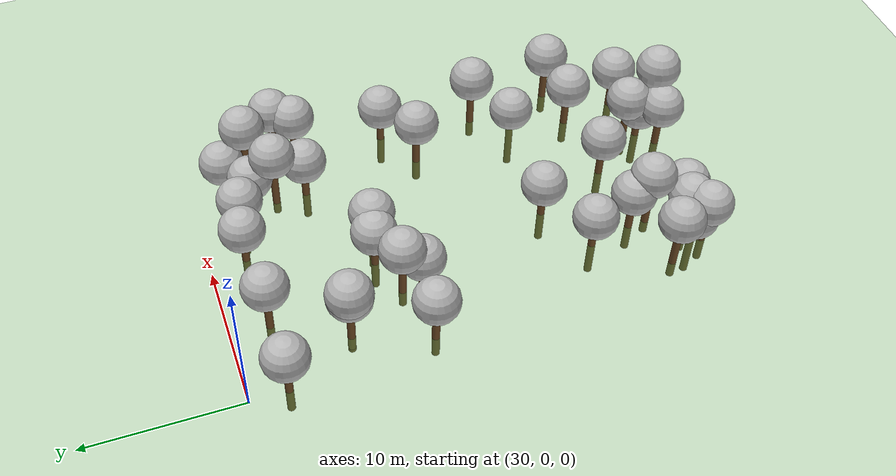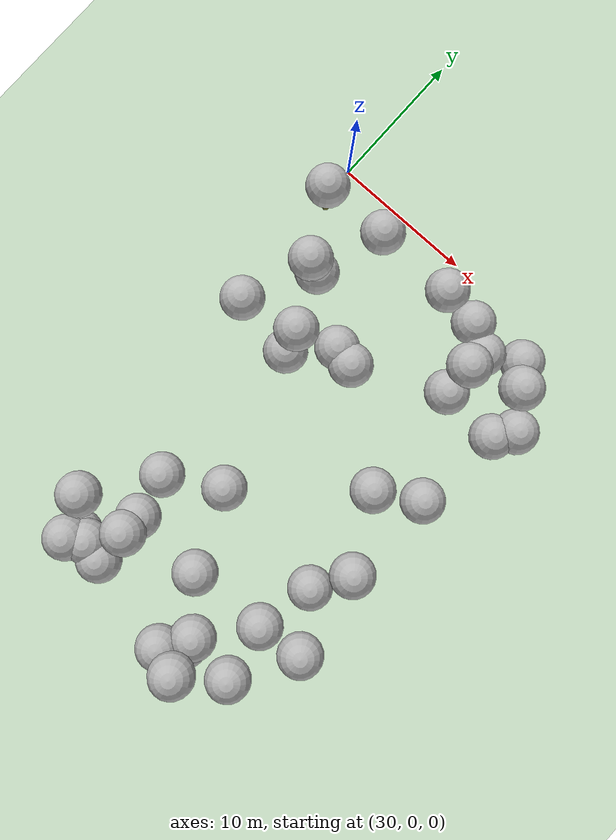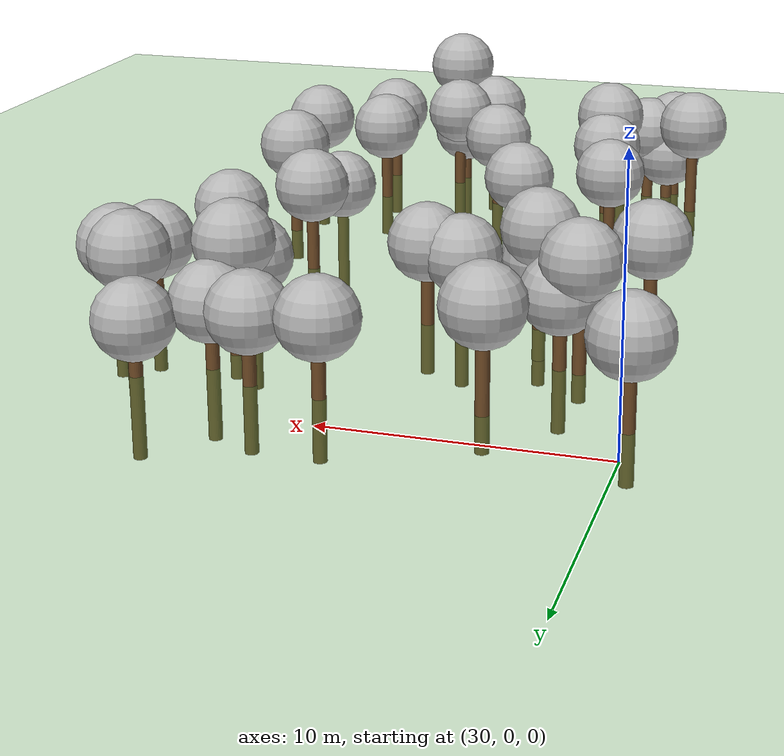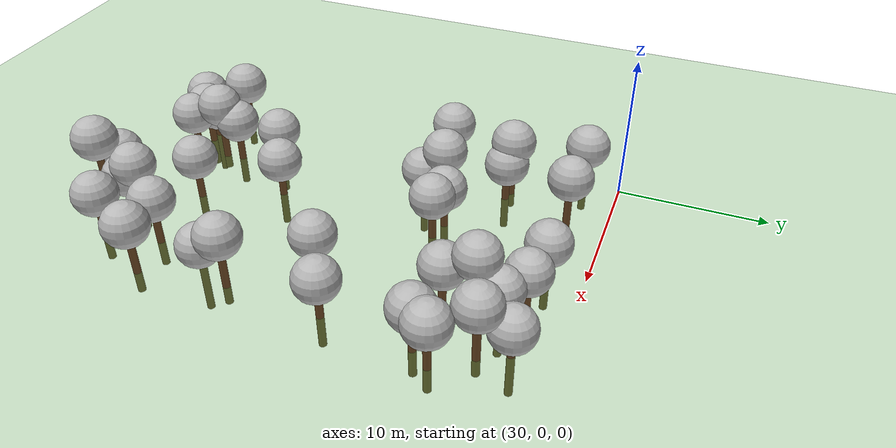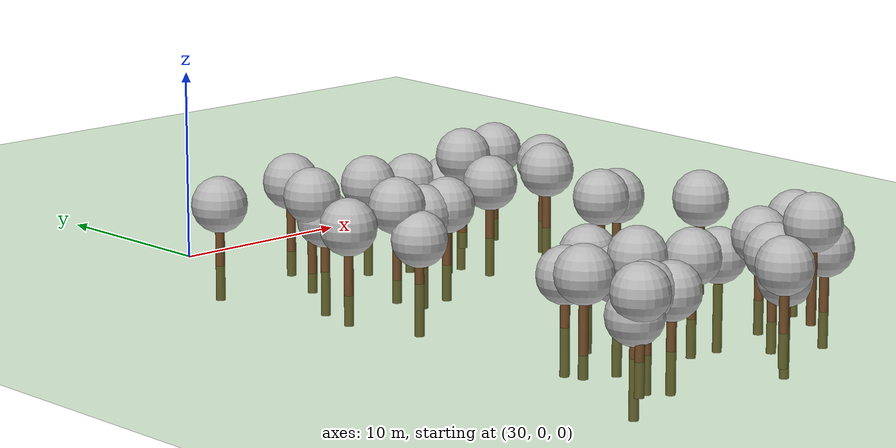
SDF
<sdf version="1.5">
 <world name="default">
  <model name="tree_simple473">
   <static>1</static>
   <link name="link">
    <pose>0 0 0.1 0 -0 0</pose>
    <collision name="collision_trunk">
     <pose>0 0 2 0 -0 0</pose>
     <geometry><cylinder><radius>0.25</radius><length>4</length></cylinder></geometry>
    </collision>
    <collision name="collision_treetop">
     <pose>0 0 5.2 0 -0 0</pose>
     <geometry><sphere><radius>1.5</radius></sphere></geometry>
    </collision>
    <visual name="trunk">
     <pose>0 0 2 0 -0 0</pose>
     <geometry><cylinder><radius>0.25</radius><length>4</length></cylinder></geometry>
     <material>
      <script>
       <uri>model://tree_simple/scripts</uri>
       <uri>model://tree_simple/materials/textures</uri>
       <name>TreeSimple/Trunk</name>
      </script>
     </material>
    </visual>
    <visual name="treetop">
     <pose>0 0 5.2 0 -0 0</pose>
     <geometry><sphere><radius>1.5</radius></sphere></geometry>
     <material>
      <script>
       <uri>model://tree_simple/scripts</uri>
       <uri>model://tree_simple/materials/textures</uri>
       <name>TreeSimple/Treetop</name>
      </script>
     </material>
    </visual>
   </link>
   <pose>35.3600050295 -12.4568326028 -2.9783088301187934 0 -0 0</pose>
  </model>
  <model name="tree_simple468">
   <static>1</static>
   <link name="link">
    <pose>0 0 0.1 0 -0 0</pose>
    <collision name="collision_trunk">
     <pose>0 0 2 0 -0 0</pose>
     <geometry><cylinder><radius>0.25</radius><length>4</length></cylinder></geometry>
    </collision>
    <collision name="collision_treetop">
     <pose>0 0 5.2 0 -0 0</pose>
     <geometry><sphere><radius>1.5</radius></sphere></geometry>
    </collision>
    <visual name="trunk">
     <pose>0 0 2 0 -0 0</pose>
     <geometry><cylinder><radius>0.25</radius><length>4</length></cylinder></geometry>
     <material>
      <script>
       <uri>model://tree_simple/scripts</uri>
       <uri>model://tree_simple/materials/textures</uri>
       <name>TreeSimple/Trunk</name>
      </script>
     </material>
    </visual>
    <visual name="treetop">
     <pose>0 0 5.2 0 -0 0</pose>
     <geometry><sphere><radius>1.5</radius></sphere></geometry>
     <material>
      <script>
       <uri>model://tree_simple/scripts</uri>
       <uri>model://tree_simple/materials/textures</uri>
       <name>TreeSimple/Treetop</name>
      </script>
     </material>
    </visual>
   </link>
   <pose>33.4354348071 -7.20044037788 -2.527827676135984 0 -0 0</pose>
  </model>
  <model name="tree_simple461">
   <static>1</static>
   <link name="link">
    <pose>0 0 0.1 0 -0 0</pose>
    <collision name="collision_trunk">
     <pose>0 0 2 0 -0 0</pose>
     <geometry><cylinder><radius>0.25</radius><length>4</length></cylinder></geometry>
    </collision>
    <collision name="collision_treetop">
     <pose>0 0 5.2 0 -0 0</pose>
     <geometry><sphere><radius>1.5</radius></sphere></geometry>
    </collision>
    <visual name="trunk">
     <pose>0 0 2 0 -0 0</pose>
     <geometry><cylinder><radius>0.25</radius><length>4</length></cylinder></geometry>
     <material>
      <script>
       <uri>model://tree_simple/scripts</uri>
       <uri>model://tree_simple/materials/textures</uri>
       <name>TreeSimple/Trunk</name>
      </script>
     </material>
    </visual>
    <visual name="treetop">
     <pose>0 0 5.2 0 -0 0</pose>
     <geometry><sphere><radius>1.5</radius></sphere></geometry>
     <material>
      <script>
       <uri>model://tree_simple/scripts</uri>
       <uri>model://tree_simple/materials/textures</uri>
       <name>TreeSimple/Treetop</name>
      </script>
     </material>
    </visual>
   </link>
   <pose>48.4583895912 -13.8275705943 -2.4552792062193602 0 -0 0</pose>
  </model>
  <model name="tree_simple400">
   <static>1</static>
   <link name="link">
    <pose>0 0 0.1 0 -0 0</pose>
    <collision name="collision_trunk">
     <pose>0 0 2 0 -0 0</pose>
     <geometry><cylinder><radius>0.25</radius><length>4</length></cylinder></geometry>
    </collision>
    <collision name="collision_treetop">
     <pose>0 0 5.2 0 -0 0</pose>
     <geometry><sphere><radius>1.5</radius></sphere></geometry>
    </collision>
    <visual name="trunk">
     <pose>0 0 2 0 -0 0</pose>
     <geometry><cylinder><radius>0.25</radius><length>4</length></cylinder></geometry>
     <material>
      <script>
       <uri>model://tree_simple/scripts</uri>
       <uri>model://tree_simple/materials/textures</uri>
       <name>TreeSimple/Trunk</name>
      </script>
     </material>
    </visual>
    <visual name="treetop">
     <pose>0 0 5.2 0 -0 0</pose>
     <geometry><sphere><radius>1.5</radius></sphere></geometry>
     <material>
      <script>
       <uri>model://tree_simple/scripts</uri>
       <uri>model://tree_simple/materials/textures</uri>
       <name>TreeSimple/Treetop</name>
      </script>
     </material>
    </visual>
   </link>
   <pose>43.2651902792 -29.893141503 -1.8015736602929753 0 -0 0</pose>
  </model>
  <model name="tree_simple391">
   <static>1</static>
   <link name="link">
    <pose>0 0 0.1 0 -0 0</pose>
    <collision name="collision_trunk">
     <pose>0 0 2 0 -0 0</pose>
     <geometry><cylinder><radius>0.25</radius><length>4</length></cylinder></geometry>
    </collision>
    <collision name="collision_treetop">
     <pose>0 0 5.2 0 -0 0</pose>
     <geometry><sphere><radius>1.5</radius></sphere></geometry>
    </collision>
    <visual name="trunk">
     <pose>0 0 2 0 -0 0</pose>
     <geometry><cylinder><radius>0.25</radius><length>4</length></cylinder></geometry>
     <material>
      <script>
       <uri>model://tree_simple/scripts</uri>
       <uri>model://tree_simple/materials/textures</uri>
       <name>TreeSimple/Trunk</name>
      </script>
     </material>
    </visual>
    <visual name="treetop">
     <pose>0 0 5.2 0 -0 0</pose>
     <geometry><sphere><radius>1.5</radius></sphere></geometry>
     <material>
      <script>
       <uri>model://tree_simple/scripts</uri>
       <uri>model://tree_simple/materials/textures</uri>
       <name>TreeSimple/Treetop</name>
      </script>
     </material>
    </visual>
   </link>
   <pose>35.0521422103 -11.0450283788 -1.38863950883066 0 -0 0</pose>
  </model>
  <model name="tree_simple390">
   <static>1</static>
   <link name="link">
    <pose>0 0 0.1 0 -0 0</pose>
    <collision name="collision_trunk">
     <pose>0 0 2 0 -0 0</pose>
     <geometry><cylinder><radius>0.25</radius><length>4</length></cylinder></geometry>
    </collision>
    <collision name="collision_treetop">
     <pose>0 0 5.2 0 -0 0</pose>
     <geometry><sphere><radius>1.5</radius></sphere></geometry>
    </collision>
    <visual name="trunk">
     <pose>0 0 2 0 -0 0</pose>
     <geometry><cylinder><radius>0.25</radius><length>4</length></cylinder></geometry>
     <material>
      <script>
       <uri>model://tree_simple/scripts</uri>
       <uri>model://tree_simple/materials/textures</uri>
       <name>TreeSimple/Trunk</name>
      </script>
     </material>
    </visual>
    <visual name="treetop">
     <pose>0 0 5.2 0 -0 0</pose>
     <geometry><sphere><radius>1.5</radius></sphere></geometry>
     <material>
      <script>
       <uri>model://tree_simple/scripts</uri>
       <uri>model://tree_simple/materials/textures</uri>
       <name>TreeSimple/Treetop</name>
      </script>
     </material>
    </visual>
   </link>
   <pose>34.8279648661 -23.7978261523 -2.67735708859129 0 -0 0</pose>
  </model>
  <model name="tree_simple385">
   <static>1</static>
   <link name="link">
    <pose>0 0 0.1 0 -0 0</pose>
    <collision name="collision_trunk">
     <pose>0 0 2 0 -0 0</pose>
     <geometry><cylinder><radius>0.25</radius><length>4</length></cylinder></geometry>
    </collision>
    <collision name="collision_treetop">
     <pose>0 0 5.2 0 -0 0</pose>
     <geometry><sphere><radius>1.5</radius></sphere></geometry>
    </collision>
    <visual name="trunk">
     <pose>0 0 2 0 -0 0</pose>
     <geometry><cylinder><radius>0.25</radius><length>4</length></cylinder></geometry>
     <material>
      <script>
       <uri>model://tree_simple/scripts</uri>
       <uri>model://tree_simple/materials/textures</uri>
       <name>TreeSimple/Trunk</name>
      </script>
     </material>
    </visual>
    <visual name="treetop">
     <pose>0 0 5.2 0 -0 0</pose>
     <geometry><sphere><radius>1.5</radius></sphere></geometry>
     <material>
      <script>
       <uri>model://tree_simple/scripts</uri>
       <uri>model://tree_simple/materials/textures</uri>
       <name>TreeSimple/Treetop</name>
      </script>
     </material>
    </visual>
   </link>
   <pose>32.6946046779 -7.01468529962 -1.195493021520604 0 -0 0</pose>
  </model>
  <model name="tree_simple380">
   <static>1</static>
   <link name="link">
    <pose>0 0 0.1 0 -0 0</pose>
    <collision name="collision_trunk">
     <pose>0 0 2 0 -0 0</pose>
     <geometry><cylinder><radius>0.25</radius><length>4</length></cylinder></geometry>
    </collision>
    <collision name="collision_treetop">
     <pose>0 0 5.2 0 -0 0</pose>
     <geometry><sphere><radius>1.5</radius></sphere></geometry>
    </collision>
    <visual name="trunk">
     <pose>0 0 2 0 -0 0</pose>
     <geometry><cylinder><radius>0.25</radius><length>4</length></cylinder></geometry>
     <material>
      <script>
       <uri>model://tree_simple/scripts</uri>
       <uri>model://tree_simple/materials/textures</uri>
       <name>TreeSimple/Trunk</name>
      </script>
     </material>
    </visual>
    <visual name="treetop">
     <pose>0 0 5.2 0 -0 0</pose>
     <geometry><sphere><radius>1.5</radius></sphere></geometry>
     <material>
      <script>
       <uri>model://tree_simple/scripts</uri>
       <uri>model://tree_simple/materials/textures</uri>
       <name>TreeSimple/Treetop</name>
      </script>
     </material>
    </visual>
   </link>
   <pose>49.0222625073 -7.79616728684 -2.0938247294900254 0 -0 0</pose>
  </model>
  <model name="tree_simple379">
   <static>1</static>
   <link name="link">
    <pose>0 0 0.1 0 -0 0</pose>
    <collision name="collision_trunk">
     <pose>0 0 2 0 -0 0</pose>
     <geometry><cylinder><radius>0.25</radius><length>4</length></cylinder></geometry>
    </collision>
    <collision name="collision_treetop">
     <pose>0 0 5.2 0 -0 0</pose>
     <geometry><sphere><radius>1.5</radius></sphere></geometry>
    </collision>
    <visual name="trunk">
     <pose>0 0 2 0 -0 0</pose>
     <geometry><cylinder><radius>0.25</radius><length>4</length></cylinder></geometry>
     <material>
      <script>
       <uri>model://tree_simple/scripts</uri>
       <uri>model://tree_simple/materials/textures</uri>
       <name>TreeSimple/Trunk</name>
      </script>
     </material>
    </visual>
    <visual name="treetop">
     <pose>0 0 5.2 0 -0 0</pose>
     <geometry><sphere><radius>1.5</radius></sphere></geometry>
     <material>
      <script>
       <uri>model://tree_simple/scripts</uri>
       <uri>model://tree_simple/materials/textures</uri>
       <name>TreeSimple/Treetop</name>
      </script>
     </material>
    </visual>
   </link>
   <pose>35.6338366469 -27.9469397224 -1.0902421641744484 0 -0 0</pose>
  </model>
  <model name="tree_simple374">
   <static>1</static>
   <link name="link">
    <pose>0 0 0.1 0 -0 0</pose>
    <collision name="collision_trunk">
     <pose>0 0 2 0 -0 0</pose>
     <geometry><cylinder><radius>0.25</radius><length>4</length></cylinder></geometry>
    </collision>
    <collision name="collision_treetop">
     <pose>0 0 5.2 0 -0 0</pose>
     <geometry><sphere><radius>1.5</radius></sphere></geometry>
    </collision>
    <visual name="trunk">
     <pose>0 0 2 0 -0 0</pose>
     <geometry><cylinder><radius>0.25</radius><length>4</length></cylinder></geometry>
     <material>
      <script>
       <uri>model://tree_simple/scripts</uri>
       <uri>model://tree_simple/materials/textures</uri>
       <name>TreeSimple/Trunk</name>
      </script>
     </material>
    </visual>
    <visual name="treetop">
     <pose>0 0 5.2 0 -0 0</pose>
     <geometry><sphere><radius>1.5</radius></sphere></geometry>
     <material>
      <script>
       <uri>model://tree_simple/scripts</uri>
       <uri>model://tree_simple/materials/textures</uri>
       <name>TreeSimple/Treetop</name>
      </script>
     </material>
    </visual>
   </link>
   <pose>45.5880490305 -15.4743351493 -1.811355390749047 0 -0 0</pose>
  </model>
  <model name="tree_simple361">
   <static>1</static>
   <link name="link">
    <pose>0 0 0.1 0 -0 0</pose>
    <collision name="collision_trunk">
     <pose>0 0 2 0 -0 0</pose>
     <geometry><cylinder><radius>0.25</radius><length>4</length></cylinder></geometry>
    </collision>
    <collision name="collision_treetop">
     <pose>0 0 5.2 0 -0 0</pose>
     <geometry><sphere><radius>1.5</radius></sphere></geometry>
    </collision>
    <visual name="trunk">
     <pose>0 0 2 0 -0 0</pose>
     <geometry><cylinder><radius>0.25</radius><length>4</length></cylinder></geometry>
     <material>
      <script>
       <uri>model://tree_simple/scripts</uri>
       <uri>model://tree_simple/materials/textures</uri>
       <name>TreeSimple/Trunk</name>
      </script>
     </material>
    </visual>
    <visual name="treetop">
     <pose>0 0 5.2 0 -0 0</pose>
     <geometry><sphere><radius>1.5</radius></sphere></geometry>
     <material>
      <script>
       <uri>model://tree_simple/scripts</uri>
       <uri>model://tree_simple/materials/textures</uri>
       <name>TreeSimple/Treetop</name>
      </script>
     </material>
    </visual>
   </link>
   <pose>35.5366757962 -26.7239082098 -2.1876612104019473 0 -0 0</pose>
  </model>
  <model name="tree_simple352">
   <static>1</static>
   <link name="link">
    <pose>0 0 0.1 0 -0 0</pose>
    <collision name="collision_trunk">
     <pose>0 0 2 0 -0 0</pose>
     <geometry><cylinder><radius>0.25</radius><length>4</length></cylinder></geometry>
    </collision>
    <collision name="collision_treetop">
     <pose>0 0 5.2 0 -0 0</pose>
     <geometry><sphere><radius>1.5</radius></sphere></geometry>
    </collision>
    <visual name="trunk">
     <pose>0 0 2 0 -0 0</pose>
     <geometry><cylinder><radius>0.25</radius><length>4</length></cylinder></geometry>
     <material>
      <script>
       <uri>model://tree_simple/scripts</uri>
       <uri>model://tree_simple/materials/textures</uri>
       <name>TreeSimple/Trunk</name>
      </script>
     </material>
    </visual>
    <visual name="treetop">
     <pose>0 0 5.2 0 -0 0</pose>
     <geometry><sphere><radius>1.5</radius></sphere></geometry>
     <material>
      <script>
       <uri>model://tree_simple/scripts</uri>
       <uri>model://tree_simple/materials/textures</uri>
       <name>TreeSimple/Treetop</name>
      </script>
     </material>
    </visual>
   </link>
   <pose>37.7714253308 -10.085576638 -2.357001160882729 0 -0 0</pose>
  </model>
  <model name="tree_simple330">
   <static>1</static>
   <link name="link">
    <pose>0 0 0.1 0 -0 0</pose>
    <collision name="collision_trunk">
     <pose>0 0 2 0 -0 0</pose>
     <geometry><cylinder><radius>0.25</radius><length>4</length></cylinder></geometry>
    </collision>
    <collision name="collision_treetop">
     <pose>0 0 5.2 0 -0 0</pose>
     <geometry><sphere><radius>1.5</radius></sphere></geometry>
    </collision>
    <visual name="trunk">
     <pose>0 0 2 0 -0 0</pose>
     <geometry><cylinder><radius>0.25</radius><length>4</length></cylinder></geometry>
     <material>
      <script>
       <uri>model://tree_simple/scripts</uri>
       <uri>model://tree_simple/materials/textures</uri>
       <name>TreeSimple/Trunk</name>
      </script>
     </material>
    </visual>
    <visual name="treetop">
     <pose>0 0 5.2 0 -0 0</pose>
     <geometry><sphere><radius>1.5</radius></sphere></geometry>
     <material>
      <script>
       <uri>model://tree_simple/scripts</uri>
       <uri>model://tree_simple/materials/textures</uri>
       <name>TreeSimple/Treetop</name>
      </script>
     </material>
    </visual>
   </link>
   <pose>46.6176543064 -30.3534647409 -2.0508970475520543 0 -0 0</pose>
  </model>
  <model name="tree_simple321">
   <static>1</static>
   <link name="link">
    <pose>0 0 0.1 0 -0 0</pose>
    <collision name="collision_trunk">
     <pose>0 0 2 0 -0 0</pose>
     <geometry><cylinder><radius>0.25</radius><length>4</length></cylinder></geometry>
    </collision>
    <collision name="collision_treetop">
     <pose>0 0 5.2 0 -0 0</pose>
     <geometry><sphere><radius>1.5</radius></sphere></geometry>
    </collision>
    <visual name="trunk">
     <pose>0 0 2 0 -0 0</pose>
     <geometry><cylinder><radius>0.25</radius><length>4</length></cylinder></geometry>
     <material>
      <script>
       <uri>model://tree_simple/scripts</uri>
       <uri>model://tree_simple/materials/textures</uri>
       <name>TreeSimple/Trunk</name>
      </script>
     </material>
    </visual>
    <visual name="treetop">
     <pose>0 0 5.2 0 -0 0</pose>
     <geometry><sphere><radius>1.5</radius></sphere></geometry>
     <material>
      <script>
       <uri>model://tree_simple/scripts</uri>
       <uri>model://tree_simple/materials/textures</uri>
       <name>TreeSimple/Treetop</name>
      </script>
     </material>
    </visual>
   </link>
   <pose>42.046648374 -31.7938593585 -1.9502476550387382 0 -0 0</pose>
  </model>
  <model name="tree_simple298">
   <static>1</static>
   <link name="link">
    <pose>0 0 0.1 0 -0 0</pose>
    <collision name="collision_trunk">
     <pose>0 0 2 0 -0 0</pose>
     <geometry><cylinder><radius>0.25</radius><length>4</length></cylinder></geometry>
    </collision>
    <collision name="collision_treetop">
     <pose>0 0 5.2 0 -0 0</pose>
     <geometry><sphere><radius>1.5</radius></sphere></geometry>
    </collision>
    <visual name="trunk">
     <pose>0 0 2 0 -0 0</pose>
     <geometry><cylinder><radius>0.25</radius><length>4</length></cylinder></geometry>
     <material>
      <script>
       <uri>model://tree_simple/scripts</uri>
       <uri>model://tree_simple/materials/textures</uri>
       <name>TreeSimple/Trunk</name>
      </script>
     </material>
    </visual>
    <visual name="treetop">
     <pose>0 0 5.2 0 -0 0</pose>
     <geometry><sphere><radius>1.5</radius></sphere></geometry>
     <material>
      <script>
       <uri>model://tree_simple/scripts</uri>
       <uri>model://tree_simple/materials/textures</uri>
       <name>TreeSimple/Treetop</name>
      </script>
     </material>
    </visual>
   </link>
   <pose>33.2901714534 -30.1267743678 -3.252964226461761 0 -0 0</pose>
  </model>
  <model name="tree_simple278">
   <static>1</static>
   <link name="link">
    <pose>0 0 0.1 0 -0 0</pose>
    <collision name="collision_trunk">
     <pose>0 0 2 0 -0 0</pose>
     <geometry><cylinder><radius>0.25</radius><length>4</length></cylinder></geometry>
    </collision>
    <collision name="collision_treetop">
     <pose>0 0 5.2 0 -0 0</pose>
     <geometry><sphere><radius>1.5</radius></sphere></geometry>
    </collision>
    <visual name="trunk">
     <pose>0 0 2 0 -0 0</pose>
     <geometry><cylinder><radius>0.25</radius><length>4</length></cylinder></geometry>
     <material>
      <script>
       <uri>model://tree_simple/scripts</uri>
       <uri>model://tree_simple/materials/textures</uri>
       <name>TreeSimple/Trunk</name>
      </script>
     </material>
    </visual>
    <visual name="treetop">
     <pose>0 0 5.2 0 -0 0</pose>
     <geometry><sphere><radius>1.5</radius></sphere></geometry>
     <material>
      <script>
       <uri>model://tree_simple/scripts</uri>
       <uri>model://tree_simple/materials/textures</uri>
       <name>TreeSimple/Treetop</name>
      </script>
     </material>
    </visual>
   </link>
   <pose>38.4116061074 -21.7404675264 -2.555495734550433 0 -0 0</pose>
  </model>
  <model name="tree_simple263">
   <static>1</static>
   <link name="link">
    <pose>0 0 0.1 0 -0 0</pose>
    <collision name="collision_trunk">
     <pose>0 0 2 0 -0 0</pose>
     <geometry><cylinder><radius>0.25</radius><length>4</length></cylinder></geometry>
    </collision>
    <collision name="collision_treetop">
     <pose>0 0 5.2 0 -0 0</pose>
     <geometry><sphere><radius>1.5</radius></sphere></geometry>
    </collision>
    <visual name="trunk">
     <pose>0 0 2 0 -0 0</pose>
     <geometry><cylinder><radius>0.25</radius><length>4</length></cylinder></geometry>
     <material>
      <script>
       <uri>model://tree_simple/scripts</uri>
       <uri>model://tree_simple/materials/textures</uri>
       <name>TreeSimple/Trunk</name>
      </script>
     </material>
    </visual>
    <visual name="treetop">
     <pose>0 0 5.2 0 -0 0</pose>
     <geometry><sphere><radius>1.5</radius></sphere></geometry>
     <material>
      <script>
       <uri>model://tree_simple/scripts</uri>
       <uri>model://tree_simple/materials/textures</uri>
       <name>TreeSimple/Treetop</name>
      </script>
     </material>
    </visual>
   </link>
   <pose>40.6294575453 -26.8945764261 -2.1676871829742477 0 -0 0</pose>
  </model>
  <model name="tree_simple244">
   <static>1</static>
   <link name="link">
    <pose>0 0 0.1 0 -0 0</pose>
    <collision name="collision_trunk">
     <pose>0 0 2 0 -0 0</pose>
     <geometry><cylinder><radius>0.25</radius><length>4</length></cylinder></geometry>
    </collision>
    <collision name="collision_treetop">
     <pose>0 0 5.2 0 -0 0</pose>
     <geometry><sphere><radius>1.5</radius></sphere></geometry>
    </collision>
    <visual name="trunk">
     <pose>0 0 2 0 -0 0</pose>
     <geometry><cylinder><radius>0.25</radius><length>4</length></cylinder></geometry>
     <material>
      <script>
       <uri>model://tree_simple/scripts</uri>
       <uri>model://tree_simple/materials/textures</uri>
       <name>TreeSimple/Trunk</name>
      </script>
     </material>
    </visual>
    <visual name="treetop">
     <pose>0 0 5.2 0 -0 0</pose>
     <geometry><sphere><radius>1.5</radius></sphere></geometry>
     <material>
      <script>
       <uri>model://tree_simple/scripts</uri>
       <uri>model://tree_simple/materials/textures</uri>
       <name>TreeSimple/Treetop</name>
      </script>
     </material>
    </visual>
   </link>
   <pose>45.1720023685 -3.9344800414 -2.840725571677788 0 -0 0</pose>
  </model>
  <model name="tree_simple243">
   <static>1</static>
   <link name="link">
    <pose>0 0 0.1 0 -0 0</pose>
    <collision name="collision_trunk">
     <pose>0 0 2 0 -0 0</pose>
     <geometry><cylinder><radius>0.25</radius><length>4</length></cylinder></geometry>
    </collision>
    <collision name="collision_treetop">
     <pose>0 0 5.2 0 -0 0</pose>
     <geometry><sphere><radius>1.5</radius></sphere></geometry>
    </collision>
    <visual name="trunk">
     <pose>0 0 2 0 -0 0</pose>
     <geometry><cylinder><radius>0.25</radius><length>4</length></cylinder></geometry>
     <material>
      <script>
       <uri>model://tree_simple/scripts</uri>
       <uri>model://tree_simple/materials/textures</uri>
       <name>TreeSimple/Trunk</name>
      </script>
     </material>
    </visual>
    <visual name="treetop">
     <pose>0 0 5.2 0 -0 0</pose>
     <geometry><sphere><radius>1.5</radius></sphere></geometry>
     <material>
      <script>
       <uri>model://tree_simple/scripts</uri>
       <uri>model://tree_simple/materials/textures</uri>
       <name>TreeSimple/Treetop</name>
      </script>
     </material>
    </visual>
   </link>
   <pose>48.9656449897 -26.1871742827 -1.6393617455313487 0 -0 0</pose>
  </model>
  <model name="tree_simple235">
   <static>1</static>
   <link name="link">
    <pose>0 0 0.1 0 -0 0</pose>
    <collision name="collision_trunk">
     <pose>0 0 2 0 -0 0</pose>
     <geometry><cylinder><radius>0.25</radius><length>4</length></cylinder></geometry>
    </collision>
    <collision name="collision_treetop">
     <pose>0 0 5.2 0 -0 0</pose>
     <geometry><sphere><radius>1.5</radius></sphere></geometry>
    </collision>
    <visual name="trunk">
     <pose>0 0 2 0 -0 0</pose>
     <geometry><cylinder><radius>0.25</radius><length>4</length></cylinder></geometry>
     <material>
      <script>
       <uri>model://tree_simple/scripts</uri>
       <uri>model://tree_simple/materials/textures</uri>
       <name>TreeSimple/Trunk</name>
      </script>
     </material>
    </visual>
    <visual name="treetop">
     <pose>0 0 5.2 0 -0 0</pose>
     <geometry><sphere><radius>1.5</radius></sphere></geometry>
     <material>
      <script>
       <uri>model://tree_simple/scripts</uri>
       <uri>model://tree_simple/materials/textures</uri>
       <name>TreeSimple/Treetop</name>
      </script>
     </material>
    </visual>
   </link>
   <pose>47.4649473564 -2.51877980815 -3.254511863058776 0 -0 0</pose>
  </model>
  <model name="tree_simple210">
   <static>1</static>
   <link name="link">
    <pose>0 0 0.1 0 -0 0</pose>
    <collision name="collision_trunk">
     <pose>0 0 2 0 -0 0</pose>
     <geometry><cylinder><radius>0.25</radius><length>4</length></cylinder></geometry>
    </collision>
    <collision name="collision_treetop">
     <pose>0 0 5.2 0 -0 0</pose>
     <geometry><sphere><radius>1.5</radius></sphere></geometry>
    </collision>
    <visual name="trunk">
     <pose>0 0 2 0 -0 0</pose>
     <geometry><cylinder><radius>0.25</radius><length>4</length></cylinder></geometry>
     <material>
      <script>
       <uri>model://tree_simple/scripts</uri>
       <uri>model://tree_simple/materials/textures</uri>
       <name>TreeSimple/Trunk</name>
      </script>
     </material>
    </visual>
    <visual name="treetop">
     <pose>0 0 5.2 0 -0 0</pose>
     <geometry><sphere><radius>1.5</radius></sphere></geometry>
     <material>
      <script>
       <uri>model://tree_simple/scripts</uri>
       <uri>model://tree_simple/materials/textures</uri>
       <name>TreeSimple/Treetop</name>
      </script>
     </material>
    </visual>
   </link>
   <pose>49.9611404215 -6.54237160605 -1.9508429183902913 0 -0 0</pose>
  </model>
  <model name="tree_simple206">
   <static>1</static>
   <link name="link">
    <pose>0 0 0.1 0 -0 0</pose>
    <collision name="collision_trunk">
     <pose>0 0 2 0 -0 0</pose>
     <geometry><cylinder><radius>0.25</radius><length>4</length></cylinder></geometry>
    </collision>
    <collision name="collision_treetop">
     <pose>0 0 5.2 0 -0 0</pose>
     <geometry><sphere><radius>1.5</radius></sphere></geometry>
    </collision>
    <visual name="trunk">
     <pose>0 0 2 0 -0 0</pose>
     <geometry><cylinder><radius>0.25</radius><length>4</length></cylinder></geometry>
     <material>
      <script>
       <uri>model://tree_simple/scripts</uri>
       <uri>model://tree_simple/materials/textures</uri>
       <name>TreeSimple/Trunk</name>
      </script>
     </material>
    </visual>
    <visual name="treetop">
     <pose>0 0 5.2 0 -0 0</pose>
     <geometry><sphere><radius>1.5</radius></sphere></geometry>
     <material>
      <script>
       <uri>model://tree_simple/scripts</uri>
       <uri>model://tree_simple/materials/textures</uri>
       <name>TreeSimple/Treetop</name>
      </script>
     </material>
    </visual>
   </link>
   <pose>46.8540816615 -22.8682209639 -3.843963254352359 0 -0 0</pose>
  </model>
  <model name="tree_simple204">
   <static>1</static>
   <link name="link">
    <pose>0 0 0.1 0 -0 0</pose>
    <collision name="collision_trunk">
     <pose>0 0 2 0 -0 0</pose>
     <geometry><cylinder><radius>0.25</radius><length>4</length></cylinder></geometry>
    </collision>
    <collision name="collision_treetop">
     <pose>0 0 5.2 0 -0 0</pose>
     <geometry><sphere><radius>1.5</radius></sphere></geometry>
    </collision>
    <visual name="trunk">
     <pose>0 0 2 0 -0 0</pose>
     <geometry><cylinder><radius>0.25</radius><length>4</length></cylinder></geometry>
     <material>
      <script>
       <uri>model://tree_simple/scripts</uri>
       <uri>model://tree_simple/materials/textures</uri>
       <name>TreeSimple/Trunk</name>
      </script>
     </material>
    </visual>
    <visual name="treetop">
     <pose>0 0 5.2 0 -0 0</pose>
     <geometry><sphere><radius>1.5</radius></sphere></geometry>
     <material>
      <script>
       <uri>model://tree_simple/scripts</uri>
       <uri>model://tree_simple/materials/textures</uri>
       <name>TreeSimple/Treetop</name>
      </script>
     </material>
    </visual>
   </link>
   <pose>40.6572947186 -2.37352514754 -2.465508748368422 0 -0 0</pose>
  </model>
  <model name="tree_simple203">
   <static>1</static>
   <link name="link">
    <pose>0 0 0.1 0 -0 0</pose>
    <collision name="collision_trunk">
     <pose>0 0 2 0 -0 0</pose>
     <geometry><cylinder><radius>0.25</radius><length>4</length></cylinder></geometry>
    </collision>
    <collision name="collision_treetop">
     <pose>0 0 5.2 0 -0 0</pose>
     <geometry><sphere><radius>1.5</radius></sphere></geometry>
    </collision>
    <visual name="trunk">
     <pose>0 0 2 0 -0 0</pose>
     <geometry><cylinder><radius>0.25</radius><length>4</length></cylinder></geometry>
     <material>
      <script>
       <uri>model://tree_simple/scripts</uri>
       <uri>model://tree_simple/materials/textures</uri>
       <name>TreeSimple/Trunk</name>
      </script>
     </material>
    </visual>
    <visual name="treetop">
     <pose>0 0 5.2 0 -0 0</pose>
     <geometry><sphere><radius>1.5</radius></sphere></geometry>
     <material>
      <script>
       <uri>model://tree_simple/scripts</uri>
       <uri>model://tree_simple/materials/textures</uri>
       <name>TreeSimple/Treetop</name>
      </script>
     </material>
    </visual>
   </link>
   <pose>48.3599333119 -4.25982043144 -1.3978005201324253 0 -0 0</pose>
  </model>
  <model name="tree_simple192">
   <static>1</static>
   <link name="link">
    <pose>0 0 0.1 0 -0 0</pose>
    <collision name="collision_trunk">
     <pose>0 0 2 0 -0 0</pose>
     <geometry><cylinder><radius>0.25</radius><length>4</length></cylinder></geometry>
    </collision>
    <collision name="collision_treetop">
     <pose>0 0 5.2 0 -0 0</pose>
     <geometry><sphere><radius>1.5</radius></sphere></geometry>
    </collision>
    <visual name="trunk">
     <pose>0 0 2 0 -0 0</pose>
     <geometry><cylinder><radius>0.25</radius><length>4</length></cylinder></geometry>
     <material>
      <script>
       <uri>model://tree_simple/scripts</uri>
       <uri>model://tree_simple/materials/textures</uri>
       <name>TreeSimple/Trunk</name>
      </script>
     </material>
    </visual>
    <visual name="treetop">
     <pose>0 0 5.2 0 -0 0</pose>
     <geometry><sphere><radius>1.5</radius></sphere></geometry>
     <material>
      <script>
       <uri>model://tree_simple/scripts</uri>
       <uri>model://tree_simple/materials/textures</uri>
       <name>TreeSimple/Treetop</name>
      </script>
     </material>
    </visual>
   </link>
   <pose>39.1897553286 -10.376920586 -2.1139920237721515 0 -0 0</pose>
  </model>
  <model name="tree_simple185">
   <static>1</static>
   <link name="link">
    <pose>0 0 0.1 0 -0 0</pose>
    <collision name="collision_trunk">
     <pose>0 0 2 0 -0 0</pose>
     <geometry><cylinder><radius>0.25</radius><length>4</length></cylinder></geometry>
    </collision>
    <collision name="collision_treetop">
     <pose>0 0 5.2 0 -0 0</pose>
     <geometry><sphere><radius>1.5</radius></sphere></geometry>
    </collision>
    <visual name="trunk">
     <pose>0 0 2 0 -0 0</pose>
     <geometry><cylinder><radius>0.25</radius><length>4</length></cylinder></geometry>
     <material>
      <script>
       <uri>model://tree_simple/scripts</uri>
       <uri>model://tree_simple/materials/textures</uri>
       <name>TreeSimple/Trunk</name>
      </script>
     </material>
    </visual>
    <visual name="treetop">
     <pose>0 0 5.2 0 -0 0</pose>
     <geometry><sphere><radius>1.5</radius></sphere></geometry>
     <material>
      <script>
       <uri>model://tree_simple/scripts</uri>
       <uri>model://tree_simple/materials/textures</uri>
       <name>TreeSimple/Treetop</name>
      </script>
     </material>
    </visual>
   </link>
   <pose>48.1272235893 -20.3232479012 -1.4482581586407233 0 -0 0</pose>
  </model>
  <model name="tree_simple179">
   <static>1</static>
   <link name="link">
    <pose>0 0 0.1 0 -0 0</pose>
    <collision name="collision_trunk">
     <pose>0 0 2 0 -0 0</pose>
     <geometry><cylinder><radius>0.25</radius><length>4</length></cylinder></geometry>
    </collision>
    <collision name="collision_treetop">
     <pose>0 0 5.2 0 -0 0</pose>
     <geometry><sphere><radius>1.5</radius></sphere></geometry>
    </collision>
    <visual name="trunk">
     <pose>0 0 2 0 -0 0</pose>
     <geometry><cylinder><radius>0.25</radius><length>4</length></cylinder></geometry>
     <material>
      <script>
       <uri>model://tree_simple/scripts</uri>
       <uri>model://tree_simple/materials/textures</uri>
       <name>TreeSimple/Trunk</name>
      </script>
     </material>
    </visual>
    <visual name="treetop">
     <pose>0 0 5.2 0 -0 0</pose>
     <geometry><sphere><radius>1.5</radius></sphere></geometry>
     <material>
      <script>
       <uri>model://tree_simple/scripts</uri>
       <uri>model://tree_simple/materials/textures</uri>
       <name>TreeSimple/Treetop</name>
      </script>
     </material>
    </visual>
   </link>
   <pose>33.0376036796 -30.7285936232 -1.9414847141051703 0 -0 0</pose>
  </model>
  <model name="tree_simple137">
   <static>1</static>
   <link name="link">
    <pose>0 0 0.1 0 -0 0</pose>
    <collision name="collision_trunk">
     <pose>0 0 2 0 -0 0</pose>
     <geometry><cylinder><radius>0.25</radius><length>4</length></cylinder></geometry>
    </collision>
    <collision name="collision_treetop">
     <pose>0 0 5.2 0 -0 0</pose>
     <geometry><sphere><radius>1.5</radius></sphere></geometry>
    </collision>
    <visual name="trunk">
     <pose>0 0 2 0 -0 0</pose>
     <geometry><cylinder><radius>0.25</radius><length>4</length></cylinder></geometry>
     <material>
      <script>
       <uri>model://tree_simple/scripts</uri>
       <uri>model://tree_simple/materials/textures</uri>
       <name>TreeSimple/Trunk</name>
      </script>
     </material>
    </visual>
    <visual name="treetop">
     <pose>0 0 5.2 0 -0 0</pose>
     <geometry><sphere><radius>1.5</radius></sphere></geometry>
     <material>
      <script>
       <uri>model://tree_simple/scripts</uri>
       <uri>model://tree_simple/materials/textures</uri>
       <name>TreeSimple/Treetop</name>
      </script>
     </material>
    </visual>
   </link>
   <pose>43.7452610824 -32.0584108729 -0.0 0 -0 0</pose>
  </model>
  <model name="tree_simple133">
   <static>1</static>
   <link name="link">
    <pose>0 0 0.1 0 -0 0</pose>
    <collision name="collision_trunk">
     <pose>0 0 2 0 -0 0</pose>
     <geometry><cylinder><radius>0.25</radius><length>4</length></cylinder></geometry>
    </collision>
    <collision name="collision_treetop">
     <pose>0 0 5.2 0 -0 0</pose>
     <geometry><sphere><radius>1.5</radius></sphere></geometry>
    </collision>
    <visual name="trunk">
     <pose>0 0 2 0 -0 0</pose>
     <geometry><cylinder><radius>0.25</radius><length>4</length></cylinder></geometry>
     <material>
      <script>
       <uri>model://tree_simple/scripts</uri>
       <uri>model://tree_simple/materials/textures</uri>
       <name>TreeSimple/Trunk</name>
      </script>
     </material>
    </visual>
    <visual name="treetop">
     <pose>0 0 5.2 0 -0 0</pose>
     <geometry><sphere><radius>1.5</radius></sphere></geometry>
     <material>
      <script>
       <uri>model://tree_simple/scripts</uri>
       <uri>model://tree_simple/materials/textures</uri>
       <name>TreeSimple/Treetop</name>
      </script>
     </material>
    </visual>
   </link>
   <pose>34.1791859659 -30.0610700111 -2.1504130112290514 0 -0 0</pose>
  </model>
  <model name="tree_simple128">
   <static>1</static>
   <link name="link">
    <pose>0 0 0.1 0 -0 0</pose>
    <collision name="collision_trunk">
     <pose>0 0 2 0 -0 0</pose>
     <geometry><cylinder><radius>0.25</radius><length>4</length></cylinder></geometry>
    </collision>
    <collision name="collision_treetop">
     <pose>0 0 5.2 0 -0 0</pose>
     <geometry><sphere><radius>1.5</radius></sphere></geometry>
    </collision>
    <visual name="trunk">
     <pose>0 0 2 0 -0 0</pose>
     <geometry><cylinder><radius>0.25</radius><length>4</length></cylinder></geometry>
     <material>
      <script>
       <uri>model://tree_simple/scripts</uri>
       <uri>model://tree_simple/materials/textures</uri>
       <name>TreeSimple/Trunk</name>
      </script>
     </material>
    </visual>
    <visual name="treetop">
     <pose>0 0 5.2 0 -0 0</pose>
     <geometry><sphere><radius>1.5</radius></sphere></geometry>
     <material>
      <script>
       <uri>model://tree_simple/scripts</uri>
       <uri>model://tree_simple/materials/textures</uri>
       <name>TreeSimple/Treetop</name>
      </script>
     </material>
    </visual>
   </link>
   <pose>45.9201829733 -26.5855260125 -1.9683307737144302 0 -0 0</pose>
  </model>
  <model name="tree_simple118">
   <static>1</static>
   <link name="link">
    <pose>0 0 0.1 0 -0 0</pose>
    <collision name="collision_trunk">
     <pose>0 0 2 0 -0 0</pose>
     <geometry><cylinder><radius>0.25</radius><length>4</length></cylinder></geometry>
    </collision>
    <collision name="collision_treetop">
     <pose>0 0 5.2 0 -0 0</pose>
     <geometry><sphere><radius>1.5</radius></sphere></geometry>
    </collision>
    <visual name="trunk">
     <pose>0 0 2 0 -0 0</pose>
     <geometry><cylinder><radius>0.25</radius><length>4</length></cylinder></geometry>
     <material>
      <script>
       <uri>model://tree_simple/scripts</uri>
       <uri>model://tree_simple/materials/textures</uri>
       <name>TreeSimple/Trunk</name>
      </script>
     </material>
    </visual>
    <visual name="treetop">
     <pose>0 0 5.2 0 -0 0</pose>
     <geometry><sphere><radius>1.5</radius></sphere></geometry>
     <material>
      <script>
       <uri>model://tree_simple/scripts</uri>
       <uri>model://tree_simple/materials/textures</uri>
       <name>TreeSimple/Treetop</name>
      </script>
     </material>
    </visual>
   </link>
   <pose>35.015129688 -2.52683434866 -1.5019796507385736 0 -0 0</pose>
  </model>
  <model name="tree_simple70">
   <static>1</static>
   <link name="link">
    <pose>0 0 0.1 0 -0 0</pose>
    <collision name="collision_trunk">
     <pose>0 0 2 0 -0 0</pose>
     <geometry><cylinder><radius>0.25</radius><length>4</length></cylinder></geometry>
    </collision>
    <collision name="collision_treetop">
     <pose>0 0 5.2 0 -0 0</pose>
     <geometry><sphere><radius>1.5</radius></sphere></geometry>
    </collision>
    <visual name="trunk">
     <pose>0 0 2 0 -0 0</pose>
     <geometry><cylinder><radius>0.25</radius><length>4</length></cylinder></geometry>
     <material>
      <script>
       <uri>model://tree_simple/scripts</uri>
       <uri>model://tree_simple/materials/textures</uri>
       <name>TreeSimple/Trunk</name>
      </script>
     </material>
    </visual>
    <visual name="treetop">
     <pose>0 0 5.2 0 -0 0</pose>
     <geometry><sphere><radius>1.5</radius></sphere></geometry>
     <material>
      <script>
       <uri>model://tree_simple/scripts</uri>
       <uri>model://tree_simple/materials/textures</uri>
       <name>TreeSimple/Treetop</name>
      </script>
     </material>
    </visual>
   </link>
   <pose>30.1542629043 -2.46185450146 -2.0326349462977524 0 -0 0</pose>
  </model>
  <model name="tree_simple68">
   <static>1</static>
   <link name="link">
    <pose>0 0 0.1 0 -0 0</pose>
    <collision name="collision_trunk">
     <pose>0 0 2 0 -0 0</pose>
     <geometry><cylinder><radius>0.25</radius><length>4</length></cylinder></geometry>
    </collision>
    <collision name="collision_treetop">
     <pose>0 0 5.2 0 -0 0</pose>
     <geometry><sphere><radius>1.5</radius></sphere></geometry>
    </collision>
    <visual name="trunk">
     <pose>0 0 2 0 -0 0</pose>
     <geometry><cylinder><radius>0.25</radius><length>4</length></cylinder></geometry>
     <material>
      <script>
       <uri>model://tree_simple/scripts</uri>
       <uri>model://tree_simple/materials/textures</uri>
       <name>TreeSimple/Trunk</name>
      </script>
     </material>
    </visual>
    <visual name="treetop">
     <pose>0 0 5.2 0 -0 0</pose>
     <geometry><sphere><radius>1.5</radius></sphere></geometry>
     <material>
      <script>
       <uri>model://tree_simple/scripts</uri>
       <uri>model://tree_simple/materials/textures</uri>
       <name>TreeSimple/Treetop</name>
      </script>
     </material>
    </visual>
   </link>
   <pose>43.3405594591 -2.82078180006 -2.675770925052312 0 -0 0</pose>
  </model>
  <model name="tree_simple63">
   <static>1</static>
   <link name="link">
    <pose>0 0 0.1 0 -0 0</pose>
    <collision name="collision_trunk">
     <pose>0 0 2 0 -0 0</pose>
     <geometry><cylinder><radius>0.25</radius><length>4</length></cylinder></geometry>
    </collision>
    <collision name="collision_treetop">
     <pose>0 0 5.2 0 -0 0</pose>
     <geometry><sphere><radius>1.5</radius></sphere></geometry>
    </collision>
    <visual name="trunk">
     <pose>0 0 2 0 -0 0</pose>
     <geometry><cylinder><radius>0.25</radius><length>4</length></cylinder></geometry>
     <material>
      <script>
       <uri>model://tree_simple/scripts</uri>
       <uri>model://tree_simple/materials/textures</uri>
       <name>TreeSimple/Trunk</name>
      </script>
     </material>
    </visual>
    <visual name="treetop">
     <pose>0 0 5.2 0 -0 0</pose>
     <geometry><sphere><radius>1.5</radius></sphere></geometry>
     <material>
      <script>
       <uri>model://tree_simple/scripts</uri>
       <uri>model://tree_simple/materials/textures</uri>
       <name>TreeSimple/Treetop</name>
      </script>
     </material>
    </visual>
   </link>
   <pose>31.040163495 -11.8389088534 -1.7537180396207979 0 -0 0</pose>
  </model>
  <model name="tree_simple57">
   <static>1</static>
   <link name="link">
    <pose>0 0 0.1 0 -0 0</pose>
    <collision name="collision_trunk">
     <pose>0 0 2 0 -0 0</pose>
     <geometry><cylinder><radius>0.25</radius><length>4</length></cylinder></geometry>
    </collision>
    <collision name="collision_treetop">
     <pose>0 0 5.2 0 -0 0</pose>
     <geometry><sphere><radius>1.5</radius></sphere></geometry>
    </collision>
    <visual name="trunk">
     <pose>0 0 2 0 -0 0</pose>
     <geometry><cylinder><radius>0.25</radius><length>4</length></cylinder></geometry>
     <material>
      <script>
       <uri>model://tree_simple/scripts</uri>
       <uri>model://tree_simple/materials/textures</uri>
       <name>TreeSimple/Trunk</name>
      </script>
     </material>
    </visual>
    <visual name="treetop">
     <pose>0 0 5.2 0 -0 0</pose>
     <geometry><sphere><radius>1.5</radius></sphere></geometry>
     <material>
      <script>
       <uri>model://tree_simple/scripts</uri>
       <uri>model://tree_simple/materials/textures</uri>
       <name>TreeSimple/Treetop</name>
      </script>
     </material>
    </visual>
   </link>
   <pose>43.2092275704 -30.8438737216 -2.889488499741023 0 -0 0</pose>
  </model>
  <model name="tree_simple28">
   <static>1</static>
   <link name="link">
    <pose>0 0 0.1 0 -0 0</pose>
    <collision name="collision_trunk">
     <pose>0 0 2 0 -0 0</pose>
     <geometry><cylinder><radius>0.25</radius><length>4</length></cylinder></geometry>
    </collision>
    <collision name="collision_treetop">
     <pose>0 0 5.2 0 -0 0</pose>
     <geometry><sphere><radius>1.5</radius></sphere></geometry>
    </collision>
    <visual name="trunk">
     <pose>0 0 2 0 -0 0</pose>
     <geometry><cylinder><radius>0.25</radius><length>4</length></cylinder></geometry>
     <material>
      <script>
       <uri>model://tree_simple/scripts</uri>
       <uri>model://tree_simple/materials/textures</uri>
       <name>TreeSimple/Trunk</name>
      </script>
     </material>
    </visual>
    <visual name="treetop">
     <pose>0 0 5.2 0 -0 0</pose>
     <geometry><sphere><radius>1.5</radius></sphere></geometry>
     <material>
      <script>
       <uri>model://tree_simple/scripts</uri>
       <uri>model://tree_simple/materials/textures</uri>
       <name>TreeSimple/Treetop</name>
      </script>
     </material>
    </visual>
   </link>
   <pose>44.9993852847 -7.51228385963 -2.269140242514867 0 -0 0</pose>
  </model>
  <model name="tree_simple9">
   <static>1</static>
   <link name="link">
    <pose>0 0 0.1 0 -0 0</pose>
    <collision name="collision_trunk">
     <pose>0 0 2 0 -0 0</pose>
     <geometry><cylinder><radius>0.25</radius><length>4</length></cylinder></geometry>
    </collision>
    <collision name="collision_treetop">
     <pose>0 0 5.2 0 -0 0</pose>
     <geometry><sphere><radius>1.5</radius></sphere></geometry>
    </collision>
    <visual name="trunk">
     <pose>0 0 2 0 -0 0</pose>
     <geometry><cylinder><radius>0.25</radius><length>4</length></cylinder></geometry>
     <material>
      <script>
       <uri>model://tree_simple/scripts</uri>
       <uri>model://tree_simple/materials/textures</uri>
       <name>TreeSimple/Trunk</name>
      </script>
     </material>
    </visual>
    <visual name="treetop">
     <pose>0 0 5.2 0 -0 0</pose>
     <geometry><sphere><radius>1.5</radius></sphere></geometry>
     <material>
      <script>
       <uri>model://tree_simple/scripts</uri>
       <uri>model://tree_simple/materials/textures</uri>
       <name>TreeSimple/Treetop</name>
      </script>
     </material>
    </visual>
   </link>
   <pose>31.866196036 -28.0908269066 -1.3395659098373307 0 -0 0</pose>
  </model>
  <model name="tree_simple6">
   <static>1</static>
   <link name="link">
    <pose>0 0 0.1 0 -0 0</pose>
    <collision name="collision_trunk">
     <pose>0 0 2 0 -0 0</pose>
     <geometry><cylinder><radius>0.25</radius><length>4</length></cylinder></geometry>
    </collision>
    <collision name="collision_treetop">
     <pose>0 0 5.2 0 -0 0</pose>
     <geometry><sphere><radius>1.5</radius></sphere></geometry>
    </collision>
    <visual name="trunk">
     <pose>0 0 2 0 -0 0</pose>
     <geometry><cylinder><radius>0.25</radius><length>4</length></cylinder></geometry>
     <material>
      <script>
       <uri>model://tree_simple/scripts</uri>
       <uri>model://tree_simple/materials/textures</uri>
       <name>TreeSimple/Trunk</name>
      </script>
     </material>
    </visual>
    <visual name="treetop">
     <pose>0 0 5.2 0 -0 0</pose>
     <geometry><sphere><radius>1.5</radius></sphere></geometry>
     <material>
      <script>
       <uri>model://tree_simple/scripts</uri>
       <uri>model://tree_simple/materials/textures</uri>
       <name>TreeSimple/Treetop</name>
      </script>
     </material>
    </visual>
   </link>
   <pose>44.880609436 -5.45728442978 -1.0526870638040102 0 -0 0</pose>
  </model>
  <model name="tree_simple1">
   <static>1</static>
   <link name="link">
    <pose>0 0 0.1 0 -0 0</pose>
    <collision name="collision_trunk">
     <pose>0 0 2 0 -0 0</pose>
     <geometry><cylinder><radius>0.25</radius><length>4</length></cylinder></geometry>
    </collision>
    <collision name="collision_treetop">
     <pose>0 0 5.2 0 -0 0</pose>
     <geometry><sphere><radius>1.5</radius></sphere></geometry>
    </collision>
    <visual name="trunk">
     <pose>0 0 2 0 -0 0</pose>
     <geometry><cylinder><radius>0.25</radius><length>4</length></cylinder></geometry>
     <material>
      <script>
       <uri>model://tree_simple/scripts</uri>
       <uri>model://tree_simple/materials/textures</uri>
       <name>TreeSimple/Trunk</name>
      </script>
     </material>
    </visual>
    <visual name="treetop">
     <pose>0 0 5.2 0 -0 0</pose>
     <geometry><sphere><radius>1.5</radius></sphere></geometry>
     <material>
      <script>
       <uri>model://tree_simple/scripts</uri>
       <uri>model://tree_simple/materials/textures</uri>
       <name>TreeSimple/Treetop</name>
      </script>
     </material>
    </visual>
   </link>
   <pose>35.5272832609 -30.417089687 -2.348003107241814 0 -0 0</pose>
  </model>
  <model name="ground_plane">
   <static>true</static>
   <link name="link">
    <collision name="collision">
     <geometry><plane><normal>0 0 1</normal><size>250 250</size></plane></geometry>
     <surface><friction><ode><mu>1</mu><mu2>1</mu2></ode></friction></surface>
    </collision>
    <visual name="grass">
     <cast_shadows>false</cast_shadows>
     <geometry><plane><normal>0 0 1</normal><size>150 250</size></plane></geometry>
     <material>
      <script><uri>file://media/materials/scripts/Gazebo.material</uri><name>Gazebo/Grass</name></script>
     </material>
    </visual>
   </link>
  </model>
 </world>
</sdf>
